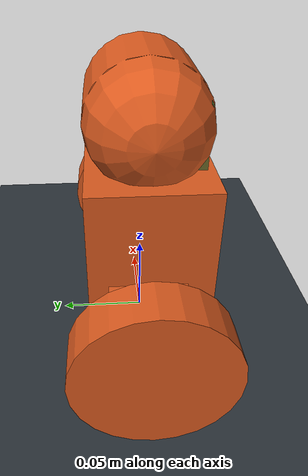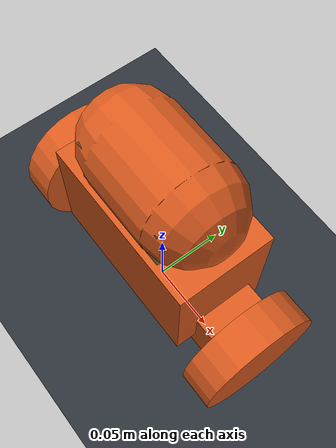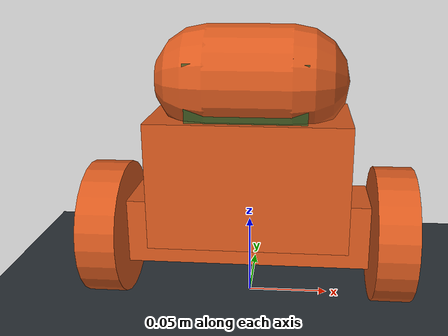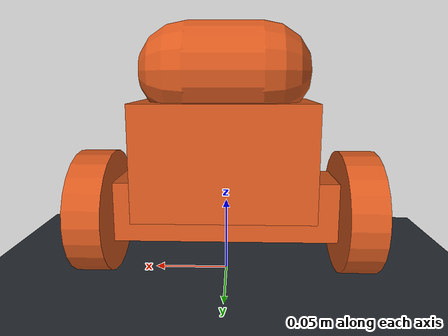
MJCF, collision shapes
<mujoco model="MiniSegway physics plant">
  <compiler angle="radian" meshdir="assets/upstream_local"/>
  <option timestep="0.001" integrator="implicitfast" gravity="0 0 -9.81"/>
  <statistic center="0 0 0.05" extent="0.28"/>

  <default>
    <default class="visual">
      <geom contype="0" conaffinity="0" group="2"/>
    </default>
    <default class="collision">
      <geom group="3" rgba="0.85 0.35 0.12 0.25" solref="0.005 1" solimp="0.9 0.95 0.001"/>
    </default>
  </default>

  <asset>
    <texture name="ground_tex" type="2d" builtin="checker" rgb1="0.22 0.25 0.28" rgb2="0.12 0.14 0.16" width="256" height="256"/>
    <material name="ground_mat" texture="ground_tex" texrepeat="4 4" reflectance="0.15"/>
    <mesh name="main_frame_mesh" file="main_frame.stl" scale="0.001 0.001 0.001"/>
    <mesh name="wheel_base_mesh" file="wheel_base.stl" scale="0.001 0.001 0.001"/>
    <mesh name="cover_mesh" file="cover.stl" scale="0.001 0.001 0.001"/>
    <mesh name="motor_left_mesh" file="motor_left.stl" scale="0.001 0.001 0.001"/>
    <mesh name="motor_right_mesh" file="motor_right.stl" scale="0.001 0.001 0.001"/>
    <mesh name="mc33926_mesh" file="mc33926.stl" scale="0.001 0.001 0.001"/>
    <mesh name="wheel_mesh" file="wheel.stl" scale="0.001 0.001 0.001"/>
    <mesh name="adapter_left_mesh" file="adapter_left.stl" scale="0.001 0.001 0.001"/>
    <mesh name="adapter_right_mesh" file="adapter_right.stl" scale="0.001 0.001 0.001"/>
  </asset>

  <worldbody>
    <light pos="0 -0.5 0.8" dir="0 0.6 -1" diffuse="0.8 0.8 0.8"/>
    <geom name="floor" type="plane" size="2 2 0.05" material="ground_mat" condim="3"/>
    <body name="chassis" pos="0 0 0.043">
      <freejoint name="root"/>
      <inertial pos="0.0001592717873 -0.001394466535 0.03368627387" mass="0.8173706489" fullinertia="0.0009508052638 0.001636345835 0.0009938057434 -1.163464906e-07 -4.840496598e-06 3.454944565e-05"/>

      <!-- Original CAD-derived visual meshes: no contact and no inferred mass. -->
      <geom name="main_frame_visual" class="visual" type="mesh" mesh="main_frame_mesh" rgba="0.12 0.42 0.72 1"/>
      <geom name="wheel_base_visual" class="visual" type="mesh" mesh="wheel_base_mesh" rgba="0.95 0.50 0.10 1"/>
      <geom name="cover_visual" class="visual" type="mesh" mesh="cover_mesh" rgba="0.18 0.72 0.32 0.72"/>
      <geom name="motor_left_visual" class="visual" type="mesh" mesh="motor_left_mesh" rgba="0.45 0.47 0.50 1"/>
      <geom name="motor_right_visual" class="visual" type="mesh" mesh="motor_right_mesh" rgba="0.45 0.47 0.50 1"/>
      <geom name="mc33926_visual" class="visual" type="mesh" mesh="mc33926_mesh" rgba="0.08 0.36 0.18 1"/>
      <geom name="battery_1_visual" class="visual" type="box" pos="0 -0.012 0.038" size="0.035 0.007 0.025" rgba="0.15 0.25 0.75 1"/>
      <geom name="battery_2_visual" class="visual" type="box" pos="0 0.012 0.038" size="0.035 0.007 0.025" rgba="0.15 0.25 0.75 1"/>
      <geom name="electronics_lump_visual" class="visual" type="box" pos="0 -0.024 0.067" size="0.035 0.006 0.0425" rgba="0.10 0.42 0.20 0.65"/>

      <!-- Deliberately simple chassis collision proxies. -->
      <geom name="wheel_base_collision" class="collision" type="box" pos="0 0.0005 0.0042" size="0.074 0.0201 0.0198"/>
      <geom name="lower_chassis_collision" class="collision" type="box" pos="0.001 -0.0015 0.038" size="0.0595 0.0325 0.038"/>
      <geom name="upper_chassis_collision" class="collision" type="capsule" fromto="-0.024 -0.0015 0.096 0.026 -0.0015 0.096" size="0.033"/>

      <!-- Massless IMU mounting frame: chassis-aligned and close to the wheel axle. -->
      <site name="imu_site" type="box" pos="0 0 0.020" quat="1 0 0 0"
            size="0.004 0.003 0.001" rgba="1 0.15 0.05 1"/>

      <body name="left_wheel" pos="-0.0885 0 0">
        <joint name="left_wheel_hinge" type="hinge" axis="1 0 0" damping="0.002" frictionloss="0.002"/>
        <inertial pos="0.001407549168 -2.310217342e-08 4.024972882e-05" mass="0.1051" fullinertia="8.559060347e-05 4.760138372e-05 4.763051958e-05 2.677568832e-11 -3.525425309e-08 -1.463149106e-11"/>
        <geom name="left_wheel_visual" class="visual" type="mesh" mesh="wheel_mesh" rgba="0.04 0.05 0.06 1"/>
        <geom name="left_adapter_visual" class="visual" type="mesh" mesh="adapter_left_mesh" rgba="0.12 0.48 0.82 1"/>
        <geom name="left_wheel_collision" class="collision" type="cylinder" size="0.042 0.012" quat="0.7071067812 0 0.7071067812 0" friction="1 0.005 0.0001"/>
      </body>

      <body name="right_wheel" pos="0.0885 0 0">
        <joint name="right_wheel_hinge" type="hinge" axis="1 0 0" damping="0.002" frictionloss="0.002"/>
        <inertial pos="-0.001407437868 -2.310217342e-08 -4.019113045e-05" mass="0.1051" fullinertia="8.559060397e-05 4.760141714e-05 4.763055251e-05 -2.601653908e-11 -3.526339188e-08 1.57007511e-11"/>
        <geom name="right_wheel_visual" class="visual" type="mesh" mesh="wheel_mesh" rgba="0.04 0.05 0.06 1"/>
        <geom name="right_adapter_visual" class="visual" type="mesh" mesh="adapter_right_mesh" rgba="0.12 0.48 0.82 1"/>
        <geom name="right_wheel_collision" class="collision" type="cylinder" size="0.042 0.012" quat="0.7071067812 0 0.7071067812 0" friction="1 0.005 0.0001"/>
      </body>
    </body>
  </worldbody>

  <!-- gear=1 maps ctrl directly to scalar hinge torque in N*m.  These are
       stall/peak-level hard limits, not continuous motor ratings. -->
  <actuator>
    <motor name="left_wheel_torque" joint="left_wheel_hinge" gear="1"
           ctrllimited="true" ctrlrange="-0.63 0.63"
           forcelimited="true" forcerange="-0.63 0.63"/>
    <motor name="right_wheel_torque" joint="right_wheel_hinge" gear="1"
           ctrllimited="true" ctrlrange="-0.63 0.63"
           forcelimited="true" forcerange="-0.63 0.63"/>
  </actuator>

  <sensor>
    <accelerometer name="imu_accelerometer" site="imu_site"/>
    <gyro name="imu_gyro" site="imu_site"/>
    <jointpos name="left_wheel_angle" joint="left_wheel_hinge"/>
    <jointpos name="right_wheel_angle" joint="right_wheel_hinge"/>
  </sensor>

  <keyframe>
    <key name="upright" qpos="0 0 0.043 1 0 0 0 0 0"/>
  </keyframe>
</mujoco>
